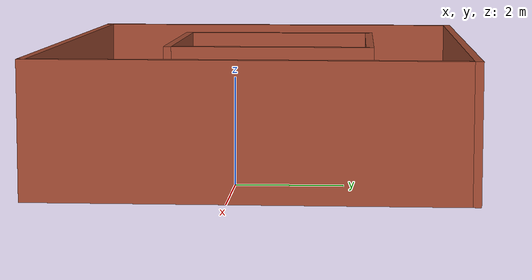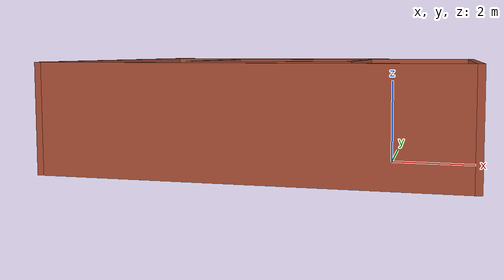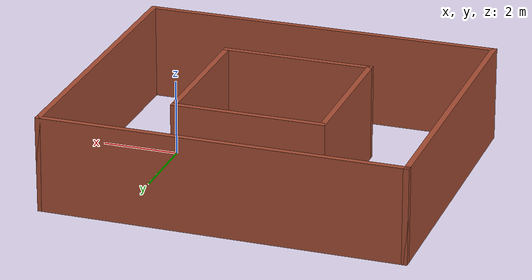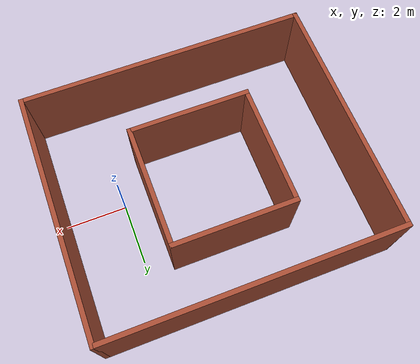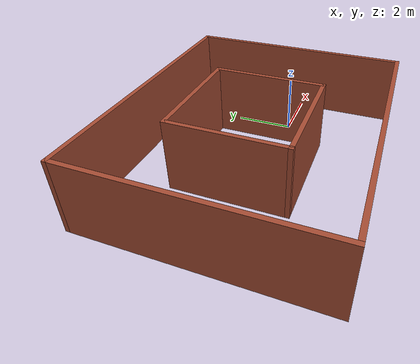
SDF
<?xml version='1.0'?>
<sdf version='1.6'>
  <model name='maze'>
    <pose frame=''>-2.72383 0.375483 0 0 -0 0</pose>
    <link name='Wall_1'>
      <collision name='Wall_1_Collision'>
        <geometry>
          <box>
            <size>4 0.15 2.5</size>
          </box>
        </geometry>
        <pose frame=''>0 0 1.25 0 -0 0</pose>
      </collision>
      <visual name='Wall_1_Visual'>
        <pose frame=''>0 0 1.25 0 -0 0</pose>
        <geometry>
          <box>
            <size>4 0.15 2.5</size>
          </box>
        </geometry>
        <material>
          <script>
            <uri>file://media/materials/scripts/gazebo.material</uri>
            <name>Gazebo/Bricks</name>
          </script>
          <ambient>1 1 1 1</ambient>
        </material>
        <meta>
          <layer>0</layer>
        </meta>
      </visual>
      <pose frame=''>-0.091168 -1.74548 0 0 -0 3.14159</pose>
    </link>
    <link name='Wall_10'>
      <collision name='Wall_10_Collision'>
        <geometry>
          <box>
            <size>8 0.15 2.5</size>
          </box>
        </geometry>
        <pose frame=''>0 0 1.25 0 -0 0</pose>
      </collision>
      <visual name='Wall_10_Visual'>
        <pose frame=''>0 0 1.25 0 -0 0</pose>
        <geometry>
          <box>
            <size>8 0.15 2.5</size>
          </box>
        </geometry>
        <material>
          <script>
            <uri>file://media/materials/scripts/gazebo.material</uri>
            <name>Gazebo/Bricks</name>
          </script>
          <ambient>1 1 1 1</ambient>
        </material>
        <meta>
          <layer>0</layer>
        </meta>
      </visual>
      <pose frame=''>4.675 0 0 0 -0 1.5708</pose>
    </link>
    <link name='Wall_12'>
      <collision name='Wall_12_Collision'>
        <geometry>
          <box>
            <size>9.5 0.15 2.5</size>
          </box>
        </geometry>
        <pose frame=''>0 0 1.25 0 -0 0</pose>
      </collision>
      <visual name='Wall_12_Visual'>
        <pose frame=''>0 0 1.25 0 -0 0</pose>
        <geometry>
          <box>
            <size>9.5 0.15 2.5</size>
          </box>
        </geometry>
        <material>
          <script>
            <uri>file://media/materials/scripts/gazebo.material</uri>
            <name>Gazebo/Bricks</name>
          </script>
          <ambient>1 1 1 1</ambient>
        </material>
        <meta>
          <layer>0</layer>
        </meta>
      </visual>
      <pose frame=''>0 3.925 0 0 -0 0</pose>
    </link>
    <link name='Wall_2'>
      <collision name='Wall_2_Collision'>
        <geometry>
          <box>
            <size>4 0.15 2.5</size>
          </box>
        </geometry>
        <pose frame=''>0 0 1.25 0 -0 0</pose>
      </collision>
      <visual name='Wall_2_Visual'>
        <pose frame=''>0 0 1.25 0 -0 0</pose>
        <geometry>
          <box>
            <size>4 0.15 2.5</size>
          </box>
        </geometry>
        <material>
          <script>
            <uri>file://media/materials/scripts/gazebo.material</uri>
            <name>Gazebo/Bricks</name>
          </script>
          <ambient>1 1 1 1</ambient>
        </material>
        <meta>
          <layer>0</layer>
        </meta>
      </visual>
      <pose frame=''>-2.01617 0.179517 0 0 -0 1.5708</pose>
    </link>
    <link name='Wall_3'>
      <collision name='Wall_3_Collision'>
        <geometry>
          <box>
            <size>4 0.15 2.5</size>
          </box>
        </geometry>
        <pose frame=''>0 0 1.25 0 -0 0</pose>
      </collision>
      <visual name='Wall_3_Visual'>
        <pose frame=''>0 0 1.25 0 -0 0</pose>
        <geometry>
          <box>
            <size>4 0.15 2.5</size>
          </box>
        </geometry>
        <material>
          <script>
            <uri>file://media/materials/scripts/gazebo.material</uri>
            <name>Gazebo/Bricks</name>
          </script>
          <ambient>1 1 1 1</ambient>
        </material>
        <meta>
          <layer>0</layer>
        </meta>
      </visual>
      <pose frame=''>-0.091168 2.10452 0 0 -0 0</pose>
    </link>
    <link name='Wall_4'>
      <collision name='Wall_4_Collision'>
        <geometry>
          <box>
            <size>4 0.15 2.5</size>
          </box>
        </geometry>
        <pose frame=''>0 0 1.25 0 -0 0</pose>
      </collision>
      <visual name='Wall_4_Visual'>
        <pose frame=''>0 0 1.25 0 -0 0</pose>
        <geometry>
          <box>
            <size>4 0.15 2.5</size>
          </box>
        </geometry>
        <material>
          <script>
            <uri>file://media/materials/scripts/gazebo.material</uri>
            <name>Gazebo/Bricks</name>
          </script>
          <ambient>1 1 1 1</ambient>
        </material>
        <meta>
          <layer>0</layer>
        </meta>
      </visual>
      <pose frame=''>1.83383 0.179517 0 0 -0 -1.5708</pose>
    </link>
    <link name='Wall_8'>
      <collision name='Wall_8_Collision'>
        <geometry>
          <box>
            <size>8 0.15 2.5</size>
          </box>
        </geometry>
        <pose frame=''>0 0 1.25 0 -0 0</pose>
      </collision>
      <visual name='Wall_8_Visual'>
        <pose frame=''>0 0 1.25 0 -0 0</pose>
        <geometry>
          <box>
            <size>8 0.15 2.5</size>
          </box>
        </geometry>
        <material>
          <script>
            <uri>file://media/materials/scripts/gazebo.material</uri>
            <name>Gazebo/Bricks</name>
          </script>
          <ambient>1 1 1 1</ambient>
        </material>
        <meta>
          <layer>0</layer>
        </meta>
      </visual>
      <pose frame=''>-4.675 0 0 0 -0 -1.5708</pose>
    </link>
    <link name='Wall_9'>
      <collision name='Wall_9_Collision'>
        <geometry>
          <box>
            <size>9.5 0.15 2.5</size>
          </box>
        </geometry>
        <pose frame=''>0 0 1.25 0 -0 0</pose>
      </collision>
      <visual name='Wall_9_Visual'>
        <pose frame=''>0 0 1.25 0 -0 0</pose>
        <geometry>
          <box>
            <size>9.5 0.15 2.5</size>
          </box>
        </geometry>
        <material>
          <script>
            <uri>file://media/materials/scripts/gazebo.material</uri>
            <name>Gazebo/Bricks</name>
          </script>
          <ambient>1 1 1 1</ambient>
        </material>
        <meta>
          <layer>0</layer>
        </meta>
      </visual>
      <pose frame=''>0 -3.925 0 0 -0 0</pose>
    </link>
    <static>1</static>
  </model>
</sdf>
